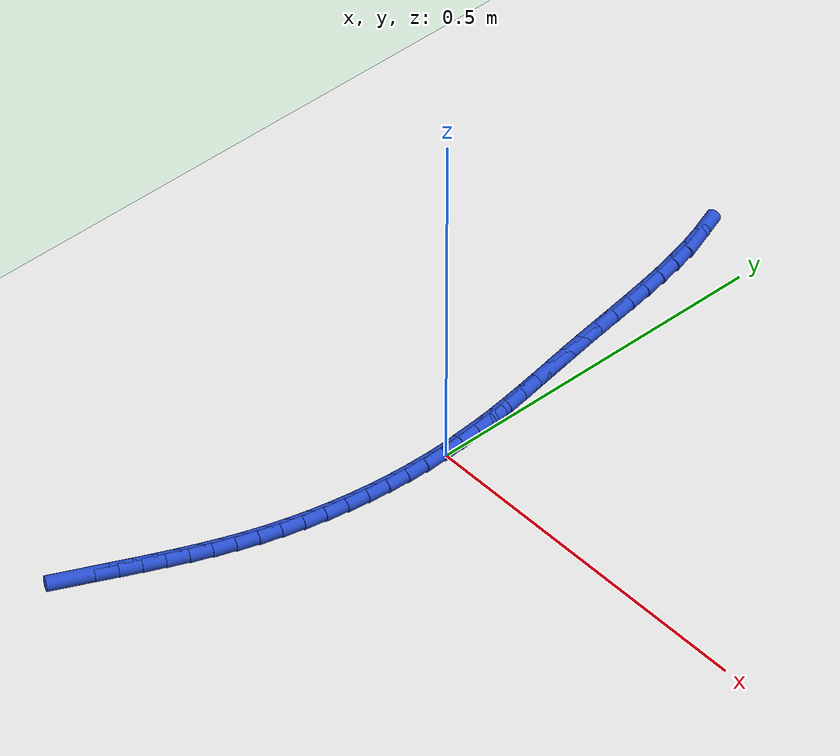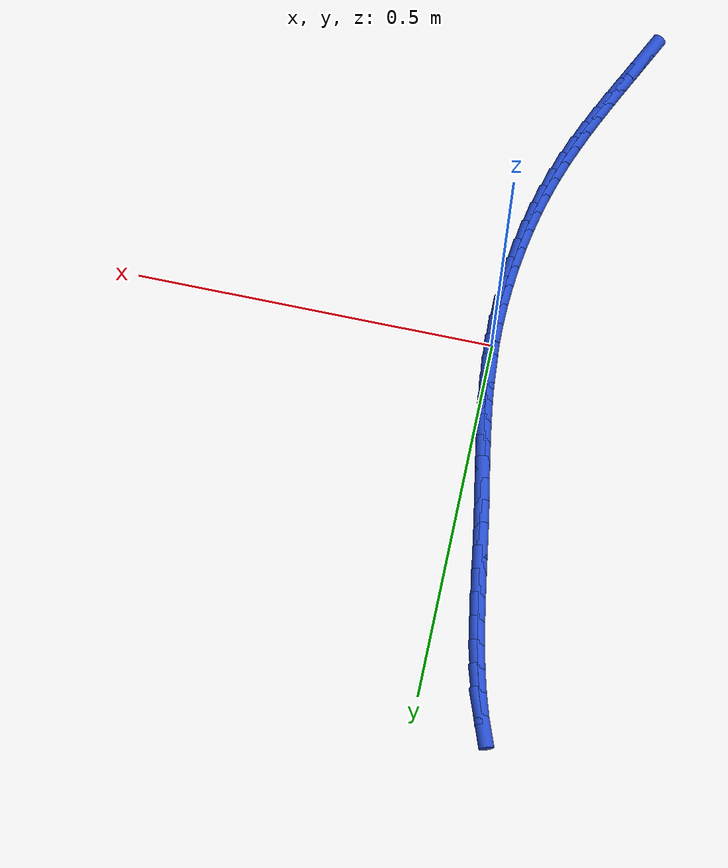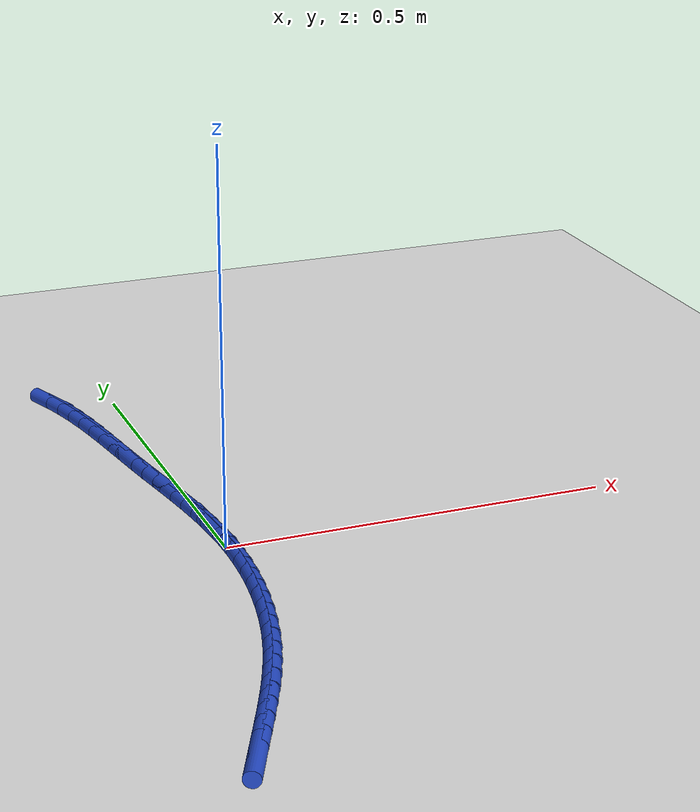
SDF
<sdf version="1.6">
 <world name="default">
  <model name="ground_plane">
   <static>1</static>
   <link name="link">
    <collision name="collision">
     <geometry><plane><normal>0 0 1</normal><size>100 100</size></plane></geometry>
     <surface><friction><ode><mu>100</mu><mu2>50</mu2></ode></friction></surface>
    </collision>
    <visual name="visual">
     <cast_shadows>0</cast_shadows>
     <geometry><plane><normal>0 0 1</normal><size>100 100</size></plane></geometry>
     <material>
      <script><uri>file://media/materials/scripts/gazebo.material</uri><name>Gazebo/WhiteGlow</name></script>
     </material>
    </visual>
   </link>
  </model>
  <model name="line">
   <link name="link_0">
    <pose>-1.1275702593849246e-17 6.245004513516506e-17 0.01 0 1.57 -1.518497362297072</pose>
    <collision name="collision">
     <geometry><cylinder><radius>0.01</radius><length>0.08</length></cylinder></geometry>
    </collision>
    <visual name="visual">
     <material>
      <script><name>Gazebo/Blue</name><uri>file://media/materials/scripts/gazebo.material</uri></script>
     </material>
     <geometry><cylinder><radius>0.01</radius><length>0.08</length></cylinder></geometry>
    </visual>
   </link>
   <link name="link_1">
    <pose>-0.0015376829839629721 0.02937497511781898 0.01 0 1.57 -1.484719107940682</pose>
    <collision name="collision">
     <geometry><cylinder><radius>0.01</radius><length>0.08</length></cylinder></geometry>
    </collision>
    <visual name="visual">
     <material>
      <script><name>Gazebo/Blue</name><uri>file://media/materials/scripts/gazebo.material</uri></script>
     </material>
     <geometry><cylinder><radius>0.01</radius><length>0.08</length></cylinder></geometry>
    </visual>
   </link>
   <link name="link_2">
    <pose>-0.004056014433118207 0.05855933687501188 0.01 0 1.57 -1.4562407040690881</pose>
    <collision name="collision">
     <geometry><cylinder><radius>0.01</radius><length>0.08</length></cylinder></geometry>
    </collision>
    <visual name="visual">
     <material>
      <script><name>Gazebo/Blue</name><uri>file://media/materials/scripts/gazebo.material</uri></script>
     </material>
     <geometry><cylinder><radius>0.01</radius><length>0.08</length></cylinder></geometry>
    </visual>
   </link>
   <link name="link_3">
    <pose>-0.0074026261896376925 0.08764529240385857 0.01 0 1.57 -1.4333413156815542</pose>
    <collision name="collision">
     <geometry><cylinder><radius>0.01</radius><length>0.08</length></cylinder></geometry>
    </collision>
    <visual name="visual">
     <material>
      <script><name>Gazebo/Blue</name><uri>file://media/materials/scripts/gazebo.material</uri></script>
     </material>
     <geometry><cylinder><radius>0.01</radius><length>0.08</length></cylinder></geometry>
    </visual>
   </link>
   <link name="link_4">
    <pose>-0.011425150095693374 0.1167250488366388 0.01 0 1.57 -1.4161705437516683</pose>
    <collision name="collision">
     <geometry><cylinder><radius>0.01</radius><length>0.08</length></cylinder></geometry>
    </collision>
    <visual name="visual">
     <material>
      <script><name>Gazebo/Blue</name><uri>file://media/materials/scripts/gazebo.material</uri></script>
     </material>
     <geometry><cylinder><radius>0.01</radius><length>0.08</length></cylinder></geometry>
    </visual>
   </link>
   <link name="link_5">
    <pose>-0.01597121799345723 0.14589081330563233 0.01 0 1.57 -1.4047664375183675</pose>
    <collision name="collision">
     <geometry><cylinder><radius>0.01</radius><length>0.08</length></cylinder></geometry>
    </collision>
    <visual name="visual">
     <material>
      <script><name>Gazebo/Blue</name><uri>file://media/materials/scripts/gazebo.material</uri></script>
     </material>
     <geometry><cylinder><radius>0.01</radius><length>0.08</length></cylinder></geometry>
    </visual>
   </link>
   <link name="link_6">
    <pose>-0.020888461725101223 0.17523479294311897 0.01 0 1.57 -1.3990735710474862</pose>
    <collision name="collision">
     <geometry><cylinder><radius>0.01</radius><length>0.08</length></cylinder></geometry>
    </collision>
    <visual name="visual">
     <material>
      <script><name>Gazebo/Blue</name><uri>file://media/materials/scripts/gazebo.material</uri></script>
     </material>
     <geometry><cylinder><radius>0.01</radius><length>0.08</length></cylinder></geometry>
    </visual>
   </link>
   <link name="link_7">
    <pose>-0.0260245131327973 0.20484919488137837 0.01 0 1.57 -1.3989586597398824</pose>
    <collision name="collision">
     <geometry><cylinder><radius>0.01</radius><length>0.08</length></cylinder></geometry>
    </collision>
    <visual name="visual">
     <material>
      <script><name>Gazebo/Blue</name><uri>file://media/materials/scripts/gazebo.material</uri></script>
     </material>
     <geometry><cylinder><radius>0.01</radius><length>0.08</length></cylinder></geometry>
    </visual>
   </link>
   <link name="link_8">
    <pose>-0.031227004058717433 0.2348262262526903 0.01 0 1.57 -1.4042225320274373</pose>
    <collision name="collision">
     <geometry><cylinder><radius>0.01</radius><length>0.08</length></cylinder></geometry>
    </collision>
    <visual name="visual">
     <material>
      <script><name>Gazebo/Blue</name><uri>file://media/materials/scripts/gazebo.material</uri></script>
     </material>
     <geometry><cylinder><radius>0.01</radius><length>0.08</length></cylinder></geometry>
    </visual>
   </link>
   <link name="link_9">
    <pose>-0.03634356634503359 0.26525809418933466 0.01 0 1.57 -1.4132478607309478</pose>
    <collision name="collision">
     <geometry><cylinder><radius>0.01</radius><length>0.08</length></cylinder></geometry>
    </collision>
    <visual name="visual">
     <material>
      <script><name>Gazebo/Blue</name><uri>file://media/materials/scripts/gazebo.material</uri></script>
     </material>
     <geometry><cylinder><radius>0.01</radius><length>0.08</length></cylinder></geometry>
    </visual>
   </link>
   <link name="link_10">
    <pose>-0.0412600304412104 0.2962055144330096 0.01 0 1.57 -1.41745928508591</pose>
    <collision name="collision">
     <geometry><cylinder><radius>0.01</radius><length>0.08</length></cylinder></geometry>
    </collision>
    <visual name="visual">
     <material>
      <script><name>Gazebo/Blue</name><uri>file://media/materials/scripts/gazebo.material</uri></script>
     </material>
     <geometry><cylinder><radius>0.01</radius><length>0.08</length></cylinder></geometry>
    </visual>
   </link>
   <link name="link_11">
    <pose>-0.04610153267686795 0.32753191608397536 0.01 0 1.57 -1.4138339207160273</pose>
    <collision name="collision">
     <geometry><cylinder><radius>0.01</radius><length>0.08</length></cylinder></geometry>
    </collision>
    <visual name="visual">
     <material>
      <script><name>Gazebo/Blue</name><uri>file://media/materials/scripts/gazebo.material</uri></script>
     </material>
     <geometry><cylinder><radius>0.01</radius><length>0.08</length></cylinder></geometry>
    </visual>
   </link>
   <link name="link_12">
    <pose>-0.051085682434906014 0.35902449234685363 0.01 0 1.57 -1.4024425547172414</pose>
    <collision name="collision">
     <geometry><cylinder><radius>0.01</radius><length>0.08</length></cylinder></geometry>
    </collision>
    <visual name="visual">
     <material>
      <script><name>Gazebo/Blue</name><uri>file://media/materials/scripts/gazebo.material</uri></script>
     </material>
     <geometry><cylinder><radius>0.01</radius><length>0.08</length></cylinder></geometry>
    </visual>
   </link>
   <link name="link_13">
    <pose>-0.056430287856641524 0.39047027256744016 0.01 0 1.57 -1.3831109274437807</pose>
    <collision name="collision">
     <geometry><cylinder><radius>0.01</radius><length>0.08</length></cylinder></geometry>
    </collision>
    <visual name="visual">
     <material>
      <script><name>Gazebo/Blue</name><uri>file://media/materials/scripts/gazebo.material</uri></script>
     </material>
     <geometry><cylinder><radius>0.01</radius><length>0.08</length></cylinder></geometry>
    </visual>
   </link>
   <link name="link_14">
    <pose>-0.06235315708339143 0.42165628609153105 0.01 0 1.57 -1.355425825009673</pose>
    <collision name="collision">
     <geometry><cylinder><radius>0.01</radius><length>0.08</length></cylinder></geometry>
    </collision>
    <visual name="visual">
     <material>
      <script><name>Gazebo/Blue</name><uri>file://media/materials/scripts/gazebo.material</uri></script>
     </material>
     <geometry><cylinder><radius>0.01</radius><length>0.08</length></cylinder></geometry>
    </visual>
   </link>
   <link name="link_15">
    <pose>-0.0690720982564727 0.45236956226492214 0.01 0 1.57 -1.3187488280029438</pose>
    <collision name="collision">
     <geometry><cylinder><radius>0.01</radius><length>0.08</length></cylinder></geometry>
    </collision>
    <visual name="visual">
     <material>
      <script><name>Gazebo/Blue</name><uri>file://media/materials/scripts/gazebo.material</uri></script>
     </material>
     <geometry><cylinder><radius>0.01</radius><length>0.08</length></cylinder></geometry>
    </visual>
   </link>
   <link name="link_16">
    <pose>-0.07680491951720222 0.48239713043340926 0.01 0 1.57 -1.2722417535709725</pose>
    <collision name="collision">
     <geometry><cylinder><radius>0.01</radius><length>0.08</length></cylinder></geometry>
    </collision>
    <visual name="visual">
     <material>
      <script><name>Gazebo/Blue</name><uri>file://media/materials/scripts/gazebo.material</uri></script>
     </material>
     <geometry><cylinder><radius>0.01</radius><length>0.08</length></cylinder></geometry>
    </visual>
   </link>
   <link name="link_17">
    <pose>-0.08576942900689699 0.5115260199427882 0.01 0 1.57 -1.2149220141728678</pose>
    <collision name="collision">
     <geometry><cylinder><radius>0.01</radius><length>0.08</length></cylinder></geometry>
    </collision>
    <visual name="visual">
     <material>
      <script><name>Gazebo/Blue</name><uri>file://media/materials/scripts/gazebo.material</uri></script>
     </material>
     <geometry><cylinder><radius>0.01</radius><length>0.08</length></cylinder></geometry>
    </visual>
   </link>
   <link name="link_213">
    <pose>-0.12881636635892582 -0.48353666234961956 0.01 0 1.57 1.1276088909261255</pose>
    <collision name="collision">
     <geometry><cylinder><radius>0.01</radius><length>0.08</length></cylinder></geometry>
    </collision>
    <visual name="visual">
     <material>
      <script><name>Gazebo/Blue</name><uri>file://media/materials/scripts/gazebo.material</uri></script>
     </material>
     <geometry><cylinder><radius>0.01</radius><length>0.08</length></cylinder></geometry>
    </visual>
   </link>
   <link name="link_214">
    <pose>-0.11583402610622899 -0.4561870104243131 0.01 0 1.57 1.1270367675700308</pose>
    <collision name="collision">
     <geometry><cylinder><radius>0.01</radius><length>0.08</length></cylinder></geometry>
    </collision>
    <visual name="visual">
     <material>
      <script><name>Gazebo/Blue</name><uri>file://media/materials/scripts/gazebo.material</uri></script>
     </material>
     <geometry><cylinder><radius>0.01</radius><length>0.08</length></cylinder></geometry>
    </visual>
   </link>
   <link name="link_215">
    <pose>-0.10296561499148399 -0.4291173597424913 0.01 0 1.57 1.1323821477296068</pose>
    <collision name="collision">
     <geometry><cylinder><radius>0.01</radius><length>0.08</length></cylinder></geometry>
    </collision>
    <visual name="visual">
     <material>
      <script><name>Gazebo/Blue</name><uri>file://media/materials/scripts/gazebo.material</uri></script>
     </material>
     <geometry><cylinder><radius>0.01</radius><length>0.08</length></cylinder></geometry>
    </visual>
   </link>
   <link name="link_216">
    <pose>-0.09034722971795509 -0.4022035738450557 0.01 0 1.57 1.1437636312032746</pose>
    <collision name="collision">
     <geometry><cylinder><radius>0.01</radius><length>0.08</length></cylinder></geometry>
    </collision>
    <visual name="visual">
     <material>
      <script><name>Gazebo/Blue</name><uri>file://media/materials/scripts/gazebo.material</uri></script>
     </material>
     <geometry><cylinder><radius>0.01</radius><length>0.08</length></cylinder></geometry>
    </visual>
   </link>
   <link name="link_217">
    <pose>-0.07811496698890558 -0.3753215162729053 0.01 0 1.57 1.1612298670301637</pose>
    <collision name="collision">
     <geometry><cylinder><radius>0.01</radius><length>0.08</length></cylinder></geometry>
    </collision>
    <visual name="visual">
     <material>
      <script><name>Gazebo/Blue</name><uri>file://media/materials/scripts/gazebo.material</uri></script>
     </material>
     <geometry><cylinder><radius>0.01</radius><length>0.08</length></cylinder></geometry>
    </visual>
   </link>
   <link name="link_218">
    <pose>-0.06640492350759906 -0.34834705056694 0.01 0 1.57 1.1847438510586066</pose>
    <collision name="collision">
     <geometry><cylinder><radius>0.01</radius><length>0.08</length></cylinder></geometry>
    </collision>
    <visual name="visual">
     <material>
      <script><name>Gazebo/Blue</name><uri>file://media/materials/scripts/gazebo.material</uri></script>
     </material>
     <geometry><cylinder><radius>0.01</radius><length>0.08</length></cylinder></geometry>
    </visual>
   </link>
   <link name="link_219">
    <pose>-0.05535319597729893 -0.32115604026805905 0.01 0 1.57 1.2141631058266351</pose>
    <collision name="collision">
     <geometry><cylinder><radius>0.01</radius><length>0.08</length></cylinder></geometry>
    </collision>
    <visual name="visual">
     <material>
      <script><name>Gazebo/Blue</name><uri>file://media/materials/scripts/gazebo.material</uri></script>
     </material>
     <geometry><cylinder><radius>0.01</radius><length>0.08</length></cylinder></geometry>
    </visual>
   </link>
   <link name="link_220">
    <pose>-0.045095881101269386 -0.2936243489171638 0.01 0 1.57 1.2492147848171171</pose>
    <collision name="collision">
     <geometry><cylinder><radius>0.01</radius><length>0.08</length></cylinder></geometry>
    </collision>
    <visual name="visual">
     <material>
      <script><name>Gazebo/Blue</name><uri>file://media/materials/scripts/gazebo.material</uri></script>
     </material>
     <geometry><cylinder><radius>0.01</radius><length>0.08</length></cylinder></geometry>
    </visual>
   </link>
   <link name="link_221">
    <pose>-0.03576900758630531 -0.2656279568008152 0.01 0 1.57 1.2879535536243474</pose>
    <collision name="collision">
     <geometry><cylinder><radius>0.01</radius><length>0.08</length></cylinder></geometry>
    </collision>
    <visual name="visual">
     <material>
      <script><name>Gazebo/Blue</name><uri>file://media/materials/scripts/gazebo.material</uri></script>
     </material>
     <geometry><cylinder><radius>0.01</radius><length>0.08</length></cylinder></geometry>
    </visual>
   </link>
   <link name="link_222">
    <pose>-0.02747696854290517 -0.23709716053568275 0.01 0 1.57 1.326269110767657</pose>
    <collision name="collision">
     <geometry><cylinder><radius>0.01</radius><length>0.08</length></cylinder></geometry>
    </collision>
    <visual name="visual">
     <material>
      <script><name>Gazebo/Blue</name><uri>file://media/materials/scripts/gazebo.material</uri></script>
     </material>
     <geometry><cylinder><radius>0.01</radius><length>0.08</length></cylinder></geometry>
    </visual>
   </link>
   <link name="link_223">
    <pose>-0.02024228907842967 -0.20810281895328944 0.01 0 1.57 1.3637617772161448</pose>
    <collision name="collision">
     <geometry><cylinder><radius>0.01</radius><length>0.08</length></cylinder></geometry>
    </collision>
    <visual name="visual">
     <material>
      <script><name>Gazebo/Blue</name><uri>file://media/materials/scripts/gazebo.material</uri></script>
     </material>
     <geometry><cylinder><radius>0.01</radius><length>0.08</length></cylinder></geometry>
    </visual>
   </link>
   <link name="link_224">
    <pose>-0.014074426323391113 -0.17873822777990753 0.01 0 1.57 1.4006844005963208</pose>
    <collision name="collision">
     <geometry><cylinder><radius>0.01</radius><length>0.08</length></cylinder></geometry>
    </collision>
    <visual name="visual">
     <material>
      <script><name>Gazebo/Blue</name><uri>file://media/materials/scripts/gazebo.material</uri></script>
     </material>
     <geometry><cylinder><radius>0.01</radius><length>0.08</length></cylinder></geometry>
    </visual>
   </link>
   <link name="link_225">
    <pose>-0.008982837408301247 -0.14909668274180704 0.01 0 1.57 1.4372841609556997</pose>
    <collision name="collision">
     <geometry><cylinder><radius>0.01</radius><length>0.08</length></cylinder></geometry>
    </collision>
    <visual name="visual">
     <material>
      <script><name>Gazebo/Blue</name><uri>file://media/materials/scripts/gazebo.material</uri></script>
     </material>
     <geometry><cylinder><radius>0.01</radius><length>0.08</length></cylinder></geometry>
    </visual>
   </link>
   <link name="link_226">
    <pose>-0.004976979463672003 -0.11927147956525859 0.01 0 1.57 1.4738054478585358</pose>
    <collision name="collision">
     <geometry><cylinder><radius>0.01</radius><length>0.08</length></cylinder></geometry>
    </collision>
    <visual name="visual">
     <material>
      <script><name>Gazebo/Blue</name><uri>file://media/materials/scripts/gazebo.material</uri></script>
     </material>
     <geometry><cylinder><radius>0.01</radius><length>0.08</length></cylinder></geometry>
    </visual>
   </link>
   <link name="link_227">
    <pose>-0.0020663096200153165 -0.08935591397653303 0.01 0 1.57 1.5104928784619245</pose>
    <collision name="collision">
     <geometry><cylinder><radius>0.01</radius><length>0.08</length></cylinder></geometry>
    </collision>
    <visual name="visual">
     <material>
      <script><name>Gazebo/Blue</name><uri>file://media/materials/scripts/gazebo.material</uri></script>
     </material>
     <geometry><cylinder><radius>0.01</radius><length>0.08</length></cylinder></geometry>
    </visual>
   </link>
   <link name="link_228">
    <pose>-0.0002602850078430928 -0.05944328170190025 0.01 0 1.57 1.547594397321472</pose>
    <collision name="collision">
     <geometry><cylinder><radius>0.01</radius><length>0.08</length></cylinder></geometry>
    </collision>
    <visual name="visual">
     <material>
      <script><name>Gazebo/Blue</name><uri>file://media/materials/scripts/gazebo.material</uri></script>
     </material>
     <geometry><cylinder><radius>0.01</radius><length>0.08</length></cylinder></geometry>
    </visual>
   </link>
   <link name="link_229">
    <pose>0.00043163724233263607 -0.029626878467632498 0.01 0 1.57 -1.5562282477760658</pose>
    <collision name="collision">
     <geometry><cylinder><radius>0.01</radius><length>0.08</length></cylinder></geometry>
    </collision>
    <visual name="visual">
     <material>
      <script><name>Gazebo/Blue</name><uri>file://media/materials/scripts/gazebo.material</uri></script>
     </material>
     <geometry><cylinder><radius>0.01</radius><length>0.08</length></cylinder></geometry>
    </visual>
   </link>
   <link name="link_230">
    <pose>-2.6020852139652106e-18 2.220446049250313e-16 0.01 0 1.57 -1.5175257956800146</pose>
    <collision name="collision">
     <geometry><cylinder><radius>0.01</radius><length>0.08</length></cylinder></geometry>
    </collision>
    <visual name="visual">
     <material>
      <script><name>Gazebo/Blue</name><uri>file://media/materials/scripts/gazebo.material</uri></script>
     </material>
     <geometry><cylinder><radius>0.01</radius><length>0.08</length></cylinder></geometry>
    </visual>
   </link>
   <link name="link_231">
    <pose>-0.00156465386535295 0.02934405797472721 0.01 0 1.57 -1.4776144261578372</pose>
    <collision name="collision">
     <geometry><cylinder><radius>0.01</radius><length>0.08</length></cylinder></geometry>
    </collision>
    <visual name="visual">
     <material>
      <script><name>Gazebo/Blue</name><uri>file://media/materials/scripts/gazebo.material</uri></script>
     </material>
     <geometry><cylinder><radius>0.01</radius><length>0.08</length></cylinder></geometry>
    </visual>
   </link>
   <link name="link_232">
    <pose>-0.004271781484238138 0.058311999730277744 0.01 0 1.57 -1.4976696236024716</pose>
    <collision name="collision">
     <geometry><cylinder><radius>0.01</radius><length>0.08</length></cylinder></geometry>
    </collision>
    <visual name="visual">
     <material>
      <script><name>Gazebo/Blue</name><uri>file://media/materials/scripts/gazebo.material</uri></script>
     </material>
     <geometry><cylinder><radius>0.01</radius><length>0.08</length></cylinder></geometry>
    </visual>
   </link>
  </model>
 </world>
</sdf>
